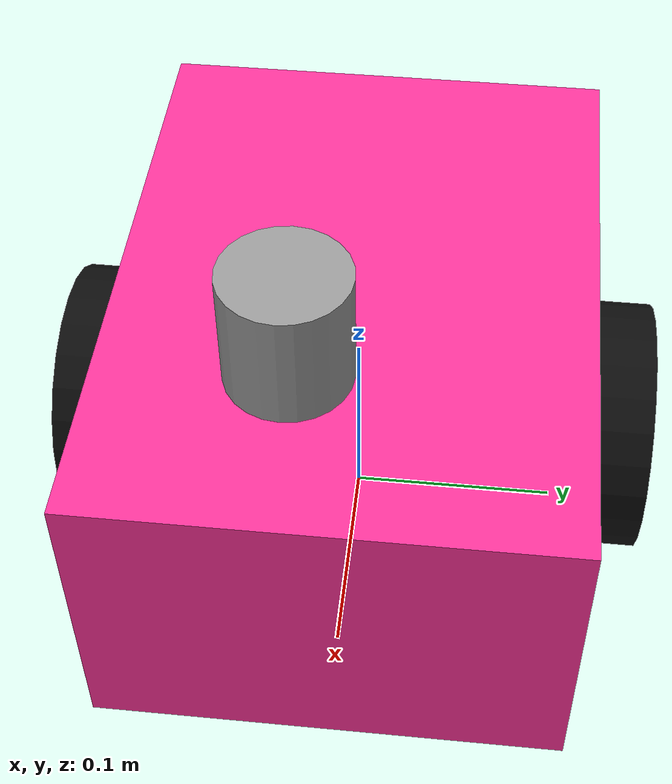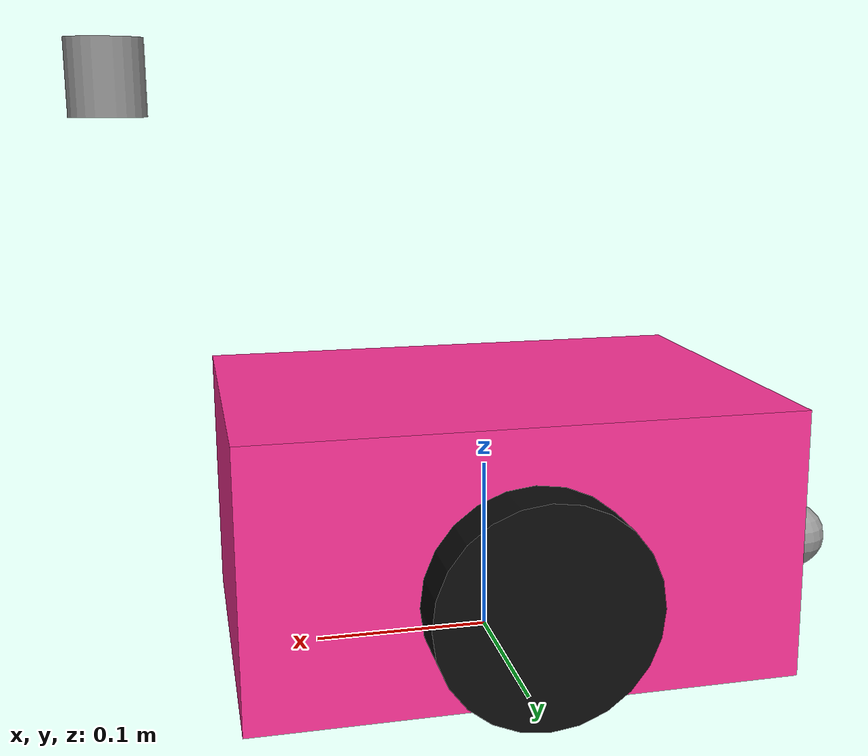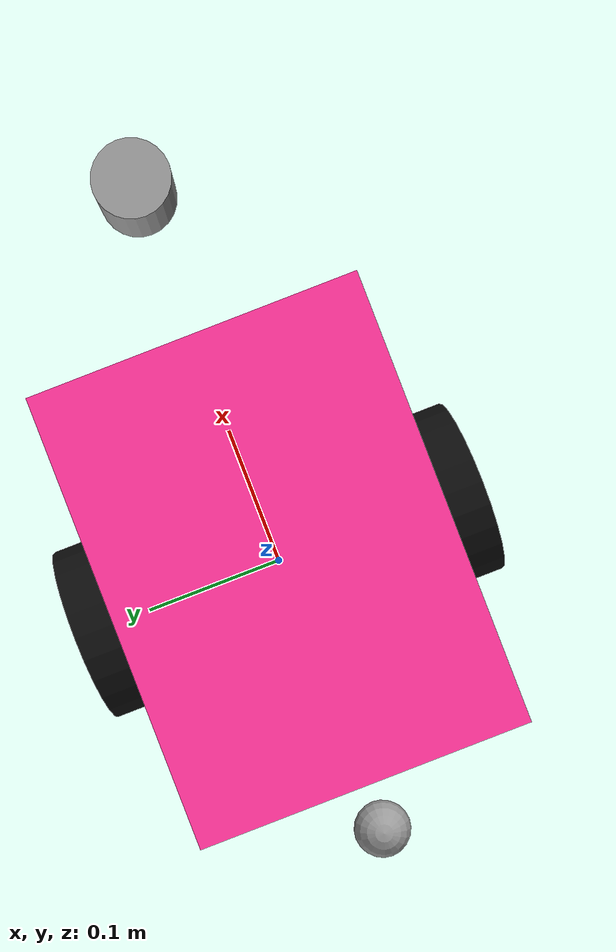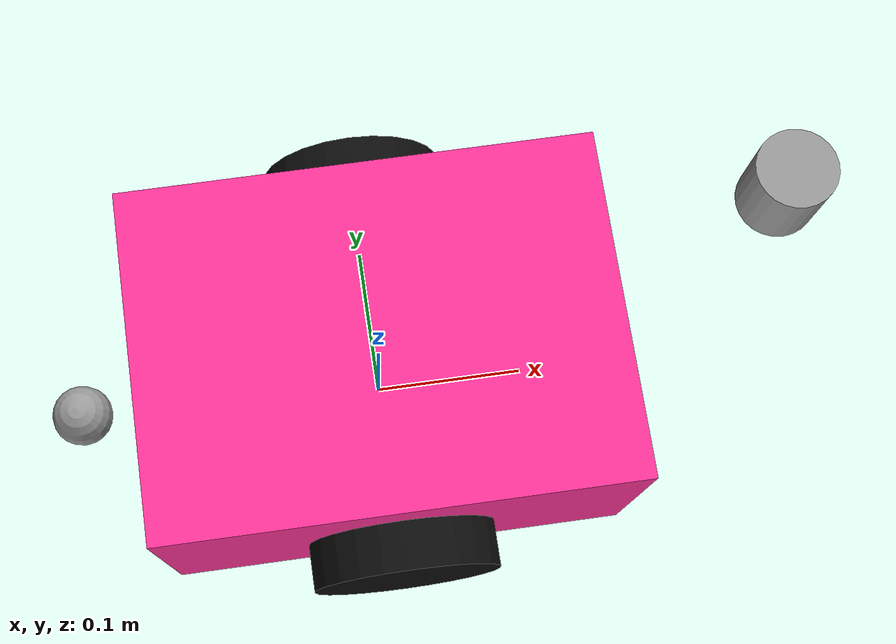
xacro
<?xml version="1.0"?>
<robot name="pink_cube_car" xmlns:xacro="http://ros.org/wiki/xacro">

  <!-- Materials -->
  <material name="pink">
    <color rgba="1.0 0.2 0.6 1.0"/>
  </material>
  <material name="black">
    <color rgba="0.05 0.05 0.05 1.0"/>
  </material>
  <material name="gray">
    <color rgba="0.6 0.6 0.6 1.0"/>
  </material>

  <!-- Base link -->
  <link name="base_link">
    <inertial>
      <origin xyz="0 0 0" rpy="0 0 0"/>
      <mass value="3.0"/>
      <inertia ixx="0.06" ixy="0.0" ixz="0.0" iyy="0.06" iyz="0.0" izz="0.06"/>
    </inertial>

    <visual>
      <origin xyz="0 0 0.075" rpy="0 0 0"/>
      <geometry>
        <box size="0.30 0.22 0.15"/>
      </geometry>
      <material name="pink"/>
    </visual>

    <collision>
      <origin xyz="0 0 0.075" rpy="0 0 0"/>
      <geometry>
        <box size="0.30 0.22 0.15"/>
      </geometry>
      <surface>
        <friction>
          <ode><mu>0.8</mu><mu2>0.8</mu2></ode>
        </friction>
      </surface>
    </collision>
  </link>

  <!-- Wheels -->
  <xacro:macro name="wheel" params="name y">
    <link name="${name}">
      <inertial>
        <origin xyz="0 0 0" rpy="0 0 0"/>
        <mass value="0.3"/>
        <inertia ixx="0.001" ixy="0.0" ixz="0.0" iyy="0.001" iyz="0.0" izz="0.001"/>
      </inertial>

      <visual>
        <origin xyz="0 0 0" rpy="1.5708 0 0"/>
        <geometry>
          <cylinder radius="0.06" length="0.03"/>
        </geometry>
        <material name="black"/>
      </visual>

      <collision>
        <origin xyz="0 0 0" rpy="1.5708 0 0"/>
        <geometry>
          <cylinder radius="0.06" length="0.03"/>
        </geometry>
        <surface>
          <friction>
            <ode>
              <mu>1.0</mu>
              <mu2>1.0</mu2>
              <slip1>0.0</slip1>
              <slip2>0.0</slip2>
            </ode>
          </friction>
          <contact>
            <ode>
              <kp>1e6</kp>
              <kd>1.0</kd>
            </ode>
          </contact>
        </surface>
      </collision>
    </link>

    <joint name="${name}_joint" type="continuous">
      <origin xyz="0 ${y} 0.06" rpy="0 0 0"/>
      <parent link="base_link"/>
      <child link="${name}"/>
      <axis xyz="0 1 0"/>
      <limit effort="8.0" velocity="25.0"/>
      <dynamics damping="0.2" friction="0.1"/>
    </joint>
  </xacro:macro>

  <!-- Left and right wheels -->
  <xacro:wheel name="left_wheel"  y="0.125"/>
  <xacro:wheel name="right_wheel" y="-0.125"/>

  <!-- Caster (rear support) -->
  <link name="caster">
    <inertial>
      <mass value="0.1"/>
      <inertia ixx="0.0005" ixy="0" ixz="0" iyy="0.0005" iyz="0" izz="0.0005"/>
    </inertial>
    <visual>
      <origin xyz="-0.1 0 0.02" rpy="0 0 0"/>
      <geometry><sphere radius="0.02"/></geometry>
      <material name="gray"/>
    </visual>
    <collision>
      <origin xyz="-0.1 0 0.02" rpy="0 0 0"/>
      <geometry><sphere radius="0.02"/></geometry>
    </collision>
  </link>

  <joint name="caster_joint" type="fixed">
    <origin xyz="-0.1 0 0.02" rpy="0 0 0"/>
    <parent link="base_link"/>
    <child link="caster"/>
  </joint>

  <!-- Lidar sensor -->
  <link name="lidar_link">
    <inertial>
      <mass value="0.1"/>
      <inertia ixx="0.0002" ixy="0" ixz="0" iyy="0.0002" iyz="0" izz="0.0002"/>
    </inertial>
    <visual>
      <origin xyz="0.1 0 0.16" rpy="0 0 0"/>
      <geometry><cylinder radius="0.02" length="0.04"/></geometry>
      <material name="gray"/>
    </visual>
    <collision>
      <origin xyz="0.1 0 0.16" rpy="0 0 0"/>
      <geometry><cylinder radius="0.02" length="0.04"/></geometry>
    </collision>
  </link>

  <joint name="lidar_joint" type="fixed">
    <origin xyz="0.1 0 0.16" rpy="0 0 0"/>
    <parent link="base_link"/>
    <child link="lidar_link"/>
  </joint>

<!-- Diff drive plugin (Gazebo Classic, ROS 2) -->
<!-- Gazebo Classic differential drive (gazebo_ros_diff_drive) -->
<gazebo>
  <plugin name="diff_drive" filename="libgazebo_ros_diff_drive.so">

    <!-- ROS2 namespace/remaps (optional) -->
    <ros>
      <namespace>/</namespace>
      <!-- You can omit remappings if you use the default topics below -->
    </ros>

    <!-- REQUIRED joints -->
    <left_joint>left_wheel_joint</left_joint>
    <right_joint>right_wheel_joint</right_joint>

    <!-- Kinematics (note: *diameter*, not radius) -->
    <wheel_separation>0.25</wheel_separation>
    <wheel_diameter>0.12</wheel_diameter>

    <!-- Limits (optional) -->
    <max_wheel_torque>50.0</max_wheel_torque>
    <max_wheel_acceleration>6.0</max_wheel_acceleration>

    <!-- Topics / frames -->
    <command_topic>cmd_vel</command_topic>
    <odometry_topic>odom</odometry_topic>
    <odometry_frame>odom</odometry_frame>
    <robot_base_frame>base_link</robot_base_frame>

    <!-- Publishing -->
    <update_rate>50</update_rate>
    <publish_odom>true</publish_odom>
    <publish_odom_tf>true</publish_odom_tf>
    <publish_wheel_tf>false</publish_wheel_tf>
  </plugin>
</gazebo>

  <!-- Lidar plugin -->
  <gazebo reference="lidar_link">
    <sensor name="lidar" type="ray">
      <always_on>true</always_on>
      <update_rate>15</update_rate>
      <visualize>true</visualize>
      <pose>0 0 0 0 0 0</pose>
      <ray>
        <scan>
          <horizontal>
            <samples>360</samples>
            <resolution>1</resolution>
            <min_angle>-3.14159</min_angle>
            <max_angle>3.14159</max_angle>
          </horizontal>
        </scan>
        <range>
          <min>0.12</min>
          <max>8.0</max>
          <resolution>0.01</resolution>
        </range>
      </ray>
      <plugin name="ros_ray" filename="libgazebo_ros_ray_sensor.so">
        <ros>
          <namespace>/</namespace>
          <remapping>~/out:=scan</remapping>
        </ros>
        <output_type>sensor_msgs/LaserScan</output_type>
        <frame_name>lidar_link</frame_name>
      </plugin>
    </sensor>
  </gazebo>

</robot>
